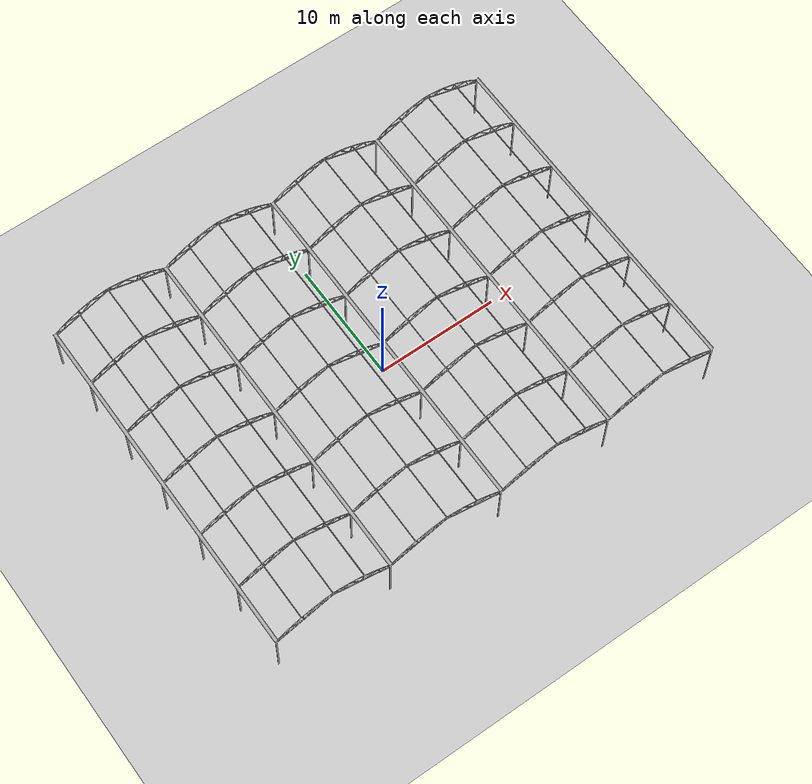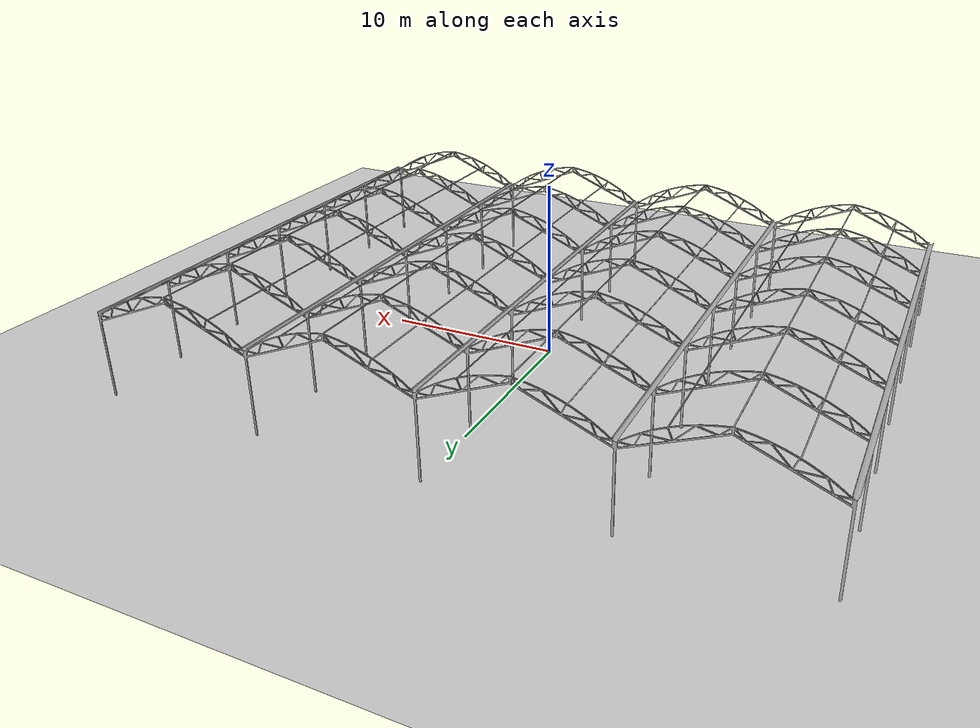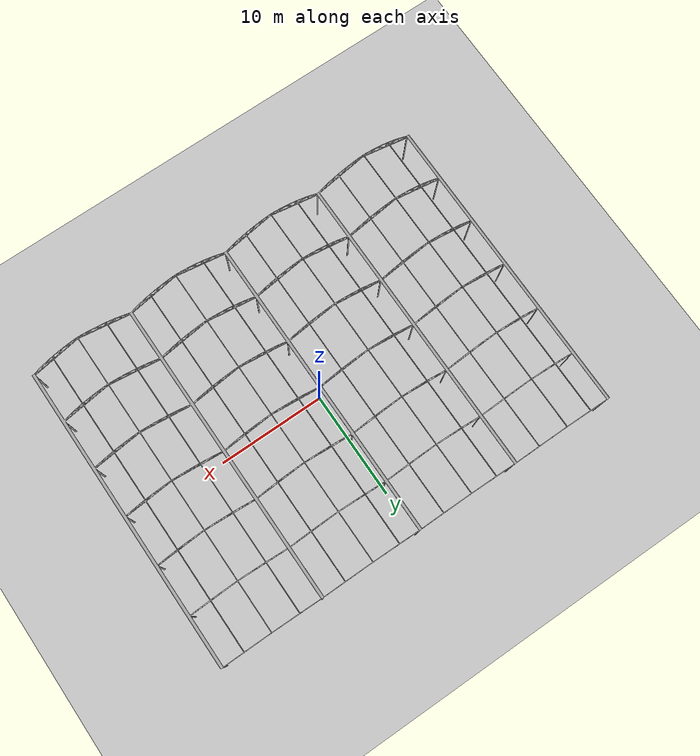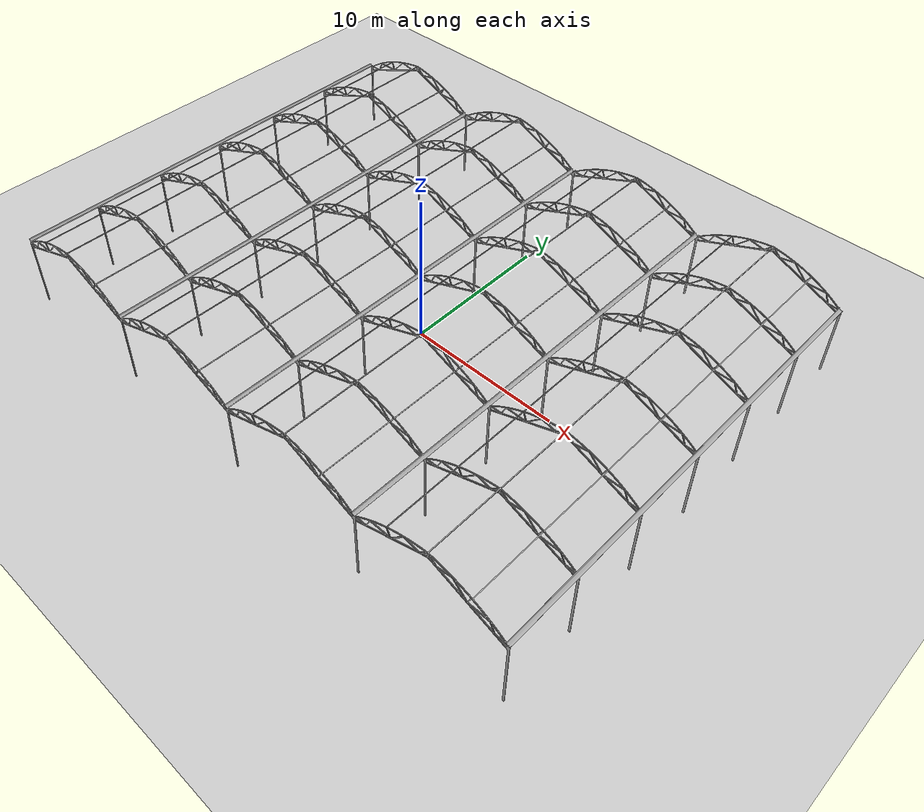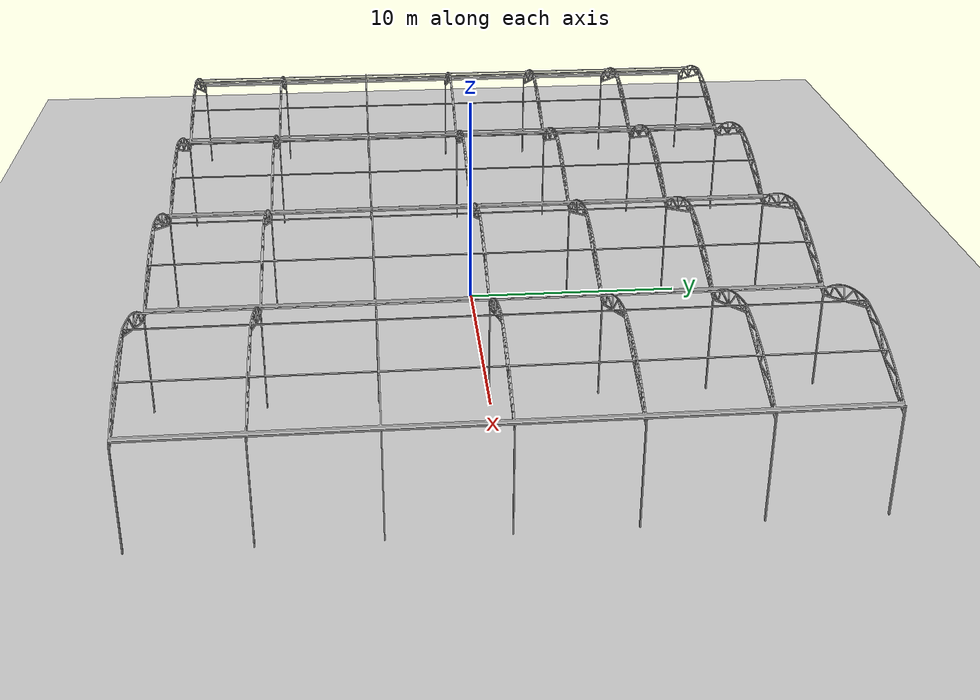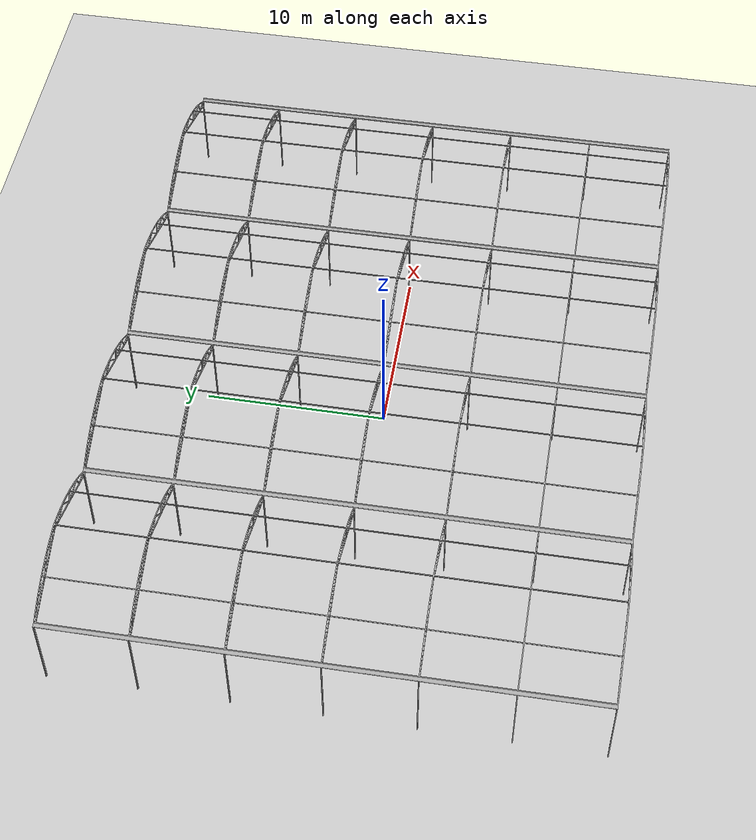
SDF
<sdf version="1.6">
 <world name="default">
  <model name="ground_plane">
   <static>1</static>
   <link name="link">
    <collision name="collision">
     <geometry><plane><normal>0 0 1</normal><size>100 100</size></plane></geometry>
     <surface>
      <contact><collide_bitmask>65535</collide_bitmask></contact>
      <friction><ode><mu>100</mu><mu2>50</mu2></ode></friction>
     </surface>
    </collision>
    <visual name="visual">
     <cast_shadows>0</cast_shadows>
     <geometry><plane><normal>0 0 1</normal><size>100 100</size></plane></geometry>
     <material>
      <script><uri>file://media/materials/scripts/gazebo.material</uri><name>Gazebo/Grey</name></script>
     </material>
    </visual>
   </link>
  </model>
  <model name="greenhouse">
   <static>1</static>
   <link name="link">
    <collision name="collision">
     <geometry>
      <mesh><scale>0.05 0.05 0.05</scale><uri>model://greenhouse/meshes/greenhouse.dae</uri></mesh>
     </geometry>
    </collision>
    <visual name="visual">
     <geometry>
      <mesh><scale>0.03 0.03 0.03</scale><uri>model://greenhouse/meshes/greenhouse.dae</uri></mesh>
     </geometry>
    </visual>
   </link>
   <pose>-24.6631 -23.579 0 0 -0 0</pose>
  </model>
 </world>
</sdf>
